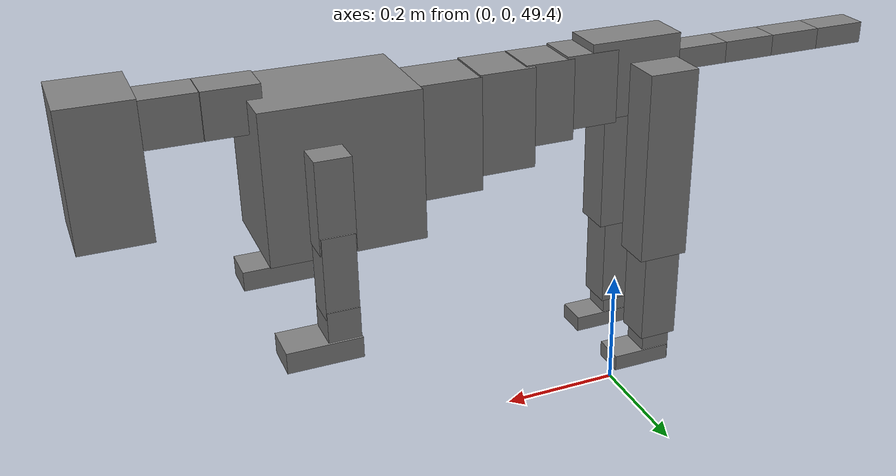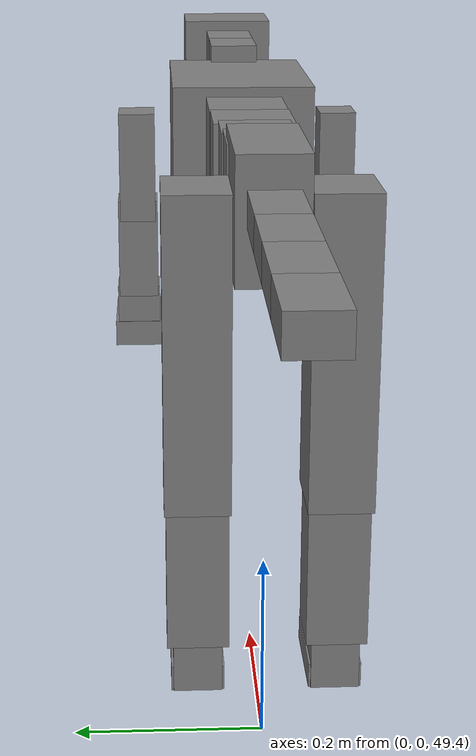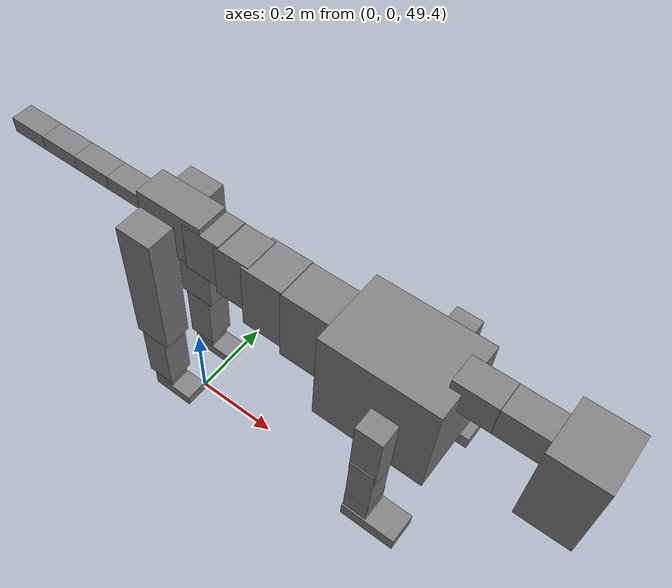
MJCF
<mujoco model="dog">

    <default>
        <joint armature="0.02" stiffness="1" damping="0.2" limited="true"/>
        <geom condim="3" friction="1 0.05 0.05" margin="0.01"/>
        <motor ctrllimited="true" ctrlrange="-1.0 1.0" forcelimited="true" gear="50"/>
    </default>

    <compiler inertiafromgeom="true" angle="radian"/>

    <option timestep="0.016" iterations="50" tolerance="1e-10" solver="Newton" jacobian="dense" cone="pyramidal"/>

    <size nconmax="20000" njmax="60000" nstack="5000000"/>
    <visual>
        <map force="0.1" zfar="30"/>
        <rgba haze="0.15 0.25 0.35 1"/>
        <quality shadowsize="2048"/>
        <global offwidth="800" offheight="800"/>
    </visual>

    <asset>
        <texture type="skybox" builtin="gradient" rgb1="0.3 0.5 0.7" rgb2="0 0 0" width="512" height="512"/>
        <texture name="texplane" type="2d" builtin="checker" rgb1=".2 .3 .4" rgb2=".1 0.15 0.2" width="512" height="512"
                 mark="cross" markrgb=".8 .8 .8"/>
        <texture name="texgeom" type="cube" builtin="flat" mark="cross" width="127" height="1278" rgb1="0.8 0.6 0.4"
                 rgb2="0.8 0.6 0.4" markrgb="1 1 1" random="0.01"/>

        <material name="matplane" reflectance="0.3" texture="texplane" texrepeat="1 1" texuniform="true"/>
        <material name="matgeom" texture="texgeom" texuniform="true" rgba="0.8 0.6 .4 1"/>
    </asset>

    <worldbody>
        <geom name="floor" pos="0 0 0" size="0 0 .25" type="plane" material="matplane" condim="3"/>

        <light directional="false" diffuse=".2 .2 .2" specular="0 0 0" pos="0 0 5" dir="0 0 -1" castshadow="false"/>
        <light mode="targetbodycom" target="torso" directional="false" diffuse=".8 .8 .8" specular="0.3 0.3 0.3"
               pos="0 0 4.0" dir="0 0 -1"/>

        <body name="root" pos="0 0 50">
            <freejoint name="root_1"/>
            <geom type="box" pos="0 0 -0.02" size="0.0774  0.0358  0.063" density="2030"/>

            <body name="spine1" pos="0.054 0 0">
                <joint name="spine1_y" axis="0 1 0" range="0 0.7" limited="true"/>
                <geom type="box" pos="0.02375 0 -0.03" size="0.04375  0.0375  0.05985" density="2030"/>

                <body name="spine2" pos="0.0612 0 0">
                    <joint name="spine2_y" axis="0 1 0" range="-0.15 0.15" limited="true"/>
                    <geom type="box" pos="0.03555  0  -0.04" size="0.04055  0.039  0.06615" density="2030"/>

                    <body name="spine3" pos="0.0730 0 0">
                        <joint name="spine3_y" axis="0 1 0" range="-0.15 0.15" limited="true"/>
                        <geom type="box" pos="0.03555  0  -0.057" size="0.04555  0.0445  0.081" density="2030"/>

                        <body name="spine4" pos="0.0780 0 0">
                            <joint name="spine4_y" axis="0 1 0" range="-0.15 0.15" limited="true"/>
                            <geom type="box" pos="0.05265  0  -0.07" size="0.05265  0.045  0.09135" density="2030"/>

                            <body name="torso" pos="0.1082 0 0">
                                <joint name="torso_y" axis="0 1 0" range="-0.15 0.15" limited="true"/>
                                <geom type="box" pos="0.11925  0  -0.085" size="0.11925  0.085  0.11745"
                                      density="2030"/>

                                <body name="neck1" pos="0.2160  0   0.0180">
                                    <joint name="neck1_y" axis="0 1 0" range="-1.2  -1" limited="true"/>
                                    <geom type="box" pos="0.0423  0  0" size="0.0423  0.03  0.036" density="2325"/>

                                    <body name="neck2" pos="0.0853  0  0">
                                        <joint name="neck2_y" axis="0 1 0" range="0.1  0" limited="true"/>
                                        <geom type="box" pos="0.0423  0  0" size="0.0423  0.03  0.036" density="2325"/>

                                        <body name="head" pos="0.0853  0  0">
                                            <joint name="head_y" axis="0 1 0" range="-0.3  -0.2" limited="true"/>
                                            <geom type="box" pos="0.0531  0  -0.055" size="0.0531  0.06  0.1044"
                                                  density="4030"/>

                                        </body>
                                    </body>
                                </body>

                                <body name="front_shoulder" pos="0.156  0   -0.0480">
                                    <joint name="front_shoulder_y" axis="0 1 0" range="-1 1.5" limited="true"/>
                                    <geom type="box" pos="0 0.13 -0.0441" size="0.0270  0.0231  0.0707" density="1158"/>
                                    <geom type="box" pos="0 -0.13 -0.0441" size="0.0270  0.0231  0.0707"
                                          density="1158"/>

                                    <body name="front_elbow" pos="0  0  -0.0882">
                                        <joint name="front_elbow_y" axis="0 1 0" range="-2 0" limited="true"/>
                                        <geom type="box" pos="0 0.13 -0.0646" size="0.0250  0.0256  0.0646"
                                              density="1081"/>
                                        <geom type="box" pos="0 -0.13 -0.0646" size="0.0250  0.0256  0.0646"
                                              density="1081"/>

                                        <body name="front_wrist" pos="0  0  -0.1293">
                                            <joint name="front_wrist_y" axis="0 1 0" range="-0.2 0" limited="true"/>
                                            <geom type="box" pos="0 0.13 -0.0250" size="0.0248  0.0276  0.0382"
                                                  density="1664"/>
                                            <geom type="box" pos="0 -0.13 -0.0250" size="0.0248  0.0276  0.0382"
                                                  density="1664"/>

                                            <body name="front_finger_end" pos="0  0  -0.0500">
                                                <joint name="front_finger_y" axis="0 1 0" range="-0.4 1"
                                                       limited="true"/>
                                                <geom type="box" pos="0.0312  0.13  -0.0015"
                                                      size="0.0571  0.0312  0.0165" density="1515"/>
                                                <geom type="box" pos="0.0312  -0.13  -0.0015"
                                                      size="0.0571  0.0312  0.0165" density="1515"/>

                                            </body>

                                        </body>
                                    </body>
                                </body>

                            </body>
                        </body>
                    </body>
                </body>
            </body>

            <body name="back_hip" pos="-0.03 0 -0.018">
                <joint name="back_hip_y" axis="0 1 0" range="-1.5 0.3" limited="true"/>
                <geom type="box" pos="0 0.07 -0.1367" size="0.0418  0.0328  0.1595" density="1154"/>
                <geom type="box" pos="0 -0.07 -0.1367" size="0.0418  0.0328  0.1595" density="1154"/>

                <body name="back_knee" pos="0  0  -0.2733">
                    <joint name="back_knee_y" axis="0 1 0" range="0 2.8" limited="true"/>
                    <geom type="box" pos="0 0.07 -0.0785" size="0.0315  0.0311  0.0940" density="1227"/>
                    <geom type="box" pos="0 -0.07 -0.0785" size="0.0315  0.0311  0.0940" density="1227"/>

                    <body name="back_ankle" pos="0  0  -0.1570">
                        <joint name="back_ankle_y" axis="0 1 0" range="-2.2 0" limited="true"/>
                        <geom type="box" pos="0 0.07 -0.0287" size="0.0247  0.0247  0.0399" density="1284"/>
                        <geom type="box" pos="0 -0.07 -0.0287" size="0.0247  0.0247  0.0399" density="1284"/>

                        <body name="back_toe_end" pos="0  0  -0.0574">
                            <joint name="back_toe_y" axis="0 1 0" range="-0.4 1" limited="true"/>
                            <geom type="box" pos="0.0269  0.07  0.0017" size="0.0494  0.0269  0.0133" density="1515"/>
                            <geom type="box" pos="0.0269  -0.07  0.0017" size="0.0494  0.0269  0.0133" density="1515"/>

                        </body>
                    </body>
                </body>
            </body>

            <body name="tail1" pos="-0.074 0 -0.006">
                <joint name="tail1_y" axis="0 1 0" range="-0.2 0.2" limited="true"/>
                <geom type="box" pos="-0.0536  0  0" size="0.045  0.025  0.0175" density="1587"/>

                <body name="tail2" pos="-0.09 0 0">
                    <joint name="tail2_y" axis="0 1 0" range="-0.2 0.2" limited="true"/>
                    <geom type="box" pos="-0.0536  0  0" size="0.045  0.025  0.0175" density="1587"/>

                    <body name="tail3" pos="-0.09 0 0">
                        <joint name="tail3_y" axis="0 1 0" range="-0.2 0.2" limited="true"/>
                        <geom type="box" pos="-0.0536  0  0" size="0.045  0.025  0.0175" density="1587"/>

                        <body name="tail4" pos="-0.09 0 0">
                            <joint name="tail4_y" axis="0 1 0" range="-0.2 0.2" limited="true"/>
                            <geom type="box" pos="-0.0536  0  0" size="0.045  0.025  0.0175" density="1587"/>

                        </body>
                    </body>
                </body>
            </body>
        </body>
    </worldbody>

    <actuator>
        <motor joint="spine1_y" forcerange="-150 150     "/>
        <motor joint="spine2_y" forcerange="-150 150     "/>
        <motor joint="spine3_y" forcerange="-150 150     "/>
        <motor joint="spine4_y" forcerange="-150 150     "/>
        <motor joint="torso_y" forcerange="-150 150     "/>
        <motor joint="neck1_y" forcerange="-100 100       "/>
        <motor joint="neck2_y" forcerange="-100 100       "/>
        <motor joint="head_y" forcerange="-150 150       "/>
        <motor joint="front_shoulder_y" forcerange="-123.27 130.78"/>
        <motor joint="front_elbow_y" forcerange="-129.10 156.76"/>
        <motor joint="front_wrist_y" forcerange="-101.72 119.11"/>
        <motor joint="front_finger_y" forcerange="-44.68 81.57"/>
        <motor joint="back_hip_y" forcerange="-337.08 300.21"/>
        <motor joint="back_knee_y" forcerange="-290.06 361.87"/>
        <motor joint="back_angle_y" forcerange="-198.63 97.05"/>
        <motor joint="back_toe_y" forcerange="-71.05 64.35"/>
        <motor joint="tail1_y" forcerange="-50 50     "/>
        <motor joint="tail2_y" forcerange="-50 50     "/>
        <motor joint="tail3_y" forcerange="-50 50     "/>
        <motor joint="tail4_y" forcerange="-50 50     "/>
    </actuator>
</mujoco>
